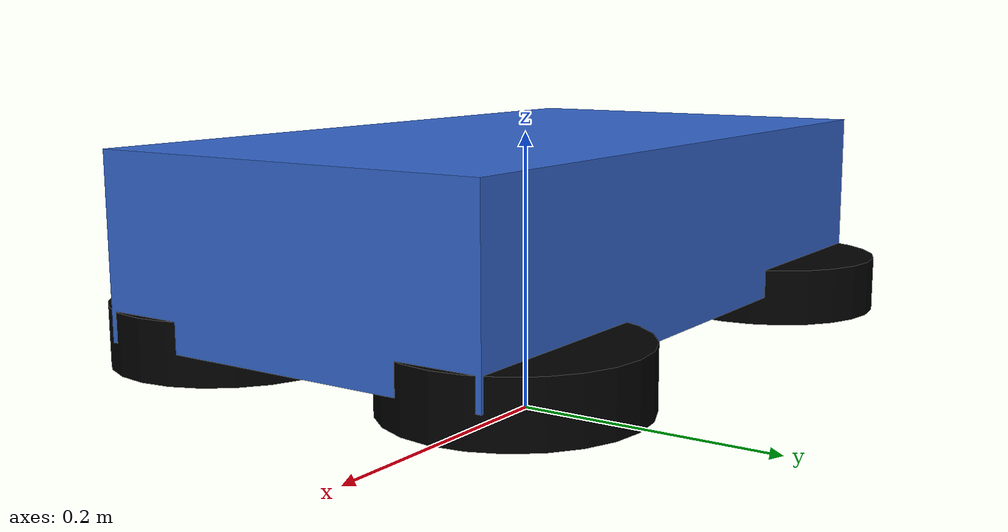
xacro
<?xml version="1.0"?>
<robot name="simple_rover" xmlns:xacro="http://www.ros.org/wiki/xacro">

  <!-- Simple 4-wheel rover: front steering + four wheels -->

  <!-- Parameters -->
  <xacro:property name="wheel_radius" value="0.08"/>
  <xacro:property name="wheel_width" value="0.04"/>
  <xacro:property name="wheel_base" value="0.35"/> <!-- distance between front and rear axles -->
  <xacro:property name="track_width" value="0.22"/> <!-- distance between left and right wheels -->
  <xacro:property name="chassis_length" value="${wheel_base + 0.15}"/>
  <xacro:property name="chassis_width" value="${track_width + 0.06}"/>
  <xacro:property name="chassis_height" value="0.12"/>
  <xacro:property name="chassis_mass" value="12.0"/>
  <xacro:property name="wheel_mass" value="1.0"/>
  <xacro:property name="steer_mass" value="0.1"/>

  <!-- Root link -->
  <link name="base_link_root"/>
  <joint name="root_to_base_link" type="fixed">
    <parent link="base_link_root"/>
    <child link="base_link"/>
    <origin xyz="0 0 0" rpy="0 0 0"/>
  </joint>

  <!-- Chassis -->
  <link name="base_link">
    <inertial>
      <origin xyz="0 0 ${wheel_radius + chassis_height/2.0}" rpy="0 0 0"/>
      <mass value="${chassis_mass}"/>
      <!-- Simple box inertia approximation -->
      <inertia ixx="${(1.0/12.0)*chassis_mass*(chassis_height*chassis_height + chassis_length*chassis_length)}"
               ixy="0" ixz="0"
               iyy="${(1.0/12.0)*chassis_mass*(chassis_width*chassis_width + chassis_length*chassis_length)}" iyz="0"
               izz="${(1.0/12.0)*chassis_mass*(chassis_width*chassis_width + chassis_height*chassis_height)}"/>
    </inertial>
    <visual>
      <origin xyz="0 0 ${wheel_radius + chassis_height/2.0}" rpy="0 0 0"/>
      <geometry>
        <box size="${chassis_length} ${chassis_width} ${chassis_height}"/>
      </geometry>
      <material name="blue"><color rgba="0.2 0.4 0.8 1.0"/></material>
    </visual>
    <collision>
      <origin xyz="0 0 ${wheel_radius + chassis_height/2.0}" rpy="0 0 0"/>
      <geometry>
        <box size="${chassis_length} ${chassis_width} ${chassis_height}"/>
      </geometry>
    </collision>
  </link>

  <!-- Steering links (small mass-less links to steer front wheels) -->
  <link name="front_left_steer">
    <inertial>
      <origin xyz="0 0 0" rpy="0 0 0"/>
      <mass value="${steer_mass}"/>
      <inertia ixx="0.0001" ixy="0" ixz="0" iyy="0.0001" iyz="0" izz="0.0001"/>
    </inertial>
  </link>
  <link name="front_right_steer">
    <inertial>
      <origin xyz="0 0 0" rpy="0 0 0"/>
      <mass value="${steer_mass}"/>
      <inertia ixx="0.0001" ixy="0" ixz="0" iyy="0.0001" iyz="0" izz="0.0001"/>
    </inertial>
  </link>

  <!-- Wheel definitions -->
  <link name="front_left_wheel">
    <inertial>
      <origin xyz="0 0 0" rpy="0 0 0"/>
      <mass value="${wheel_mass}"/>
      <inertia ixx="${0.5*wheel_mass*wheel_radius*wheel_radius}" ixy="0" ixz="0"
               iyy="${(1.0/12.0)*wheel_mass*(2*wheel_radius*2*wheel_radius + wheel_width*wheel_width)}" iyz="0"
               izz="${0.5*wheel_mass*wheel_radius*wheel_radius}"/>
    </inertial>
    <visual>
      <origin xyz="0 0 0" rpy="0 0 0"/>
      <geometry>
        <cylinder length="${wheel_width}" radius="${wheel_radius}"/>
      </geometry>
      <material name="black"><color rgba="0 0 0 1"/></material>
    </visual>
    <collision>
      <origin xyz="0 0 0" rpy="0 0 0"/>
      <geometry>
        <cylinder length="${wheel_width}" radius="${wheel_radius}"/>
      </geometry>
    </collision>
  </link>

  <link name="front_right_wheel">
    <inertial>
      <origin xyz="0 0 0" rpy="0 0 0"/>
      <mass value="${wheel_mass}"/>
      <inertia ixx="${0.5*wheel_mass*wheel_radius*wheel_radius}" ixy="0" ixz="0"
               iyy="${(1.0/12.0)*wheel_mass*(2*wheel_radius*2*wheel_radius + wheel_width*wheel_width)}" iyz="0"
               izz="${0.5*wheel_mass*wheel_radius*wheel_radius}"/>
    </inertial>
    <visual>
      <origin xyz="0 0 0" rpy="0 0 0"/>
      <geometry>
        <cylinder length="${wheel_width}" radius="${wheel_radius}"/>
      </geometry>
      <material name="black"><color rgba="0 0 0 1"/></material>
    </visual>
    <collision>
      <origin xyz="0 0 0" rpy="0 0 0"/>
      <geometry>
        <cylinder length="${wheel_width}" radius="${wheel_radius}"/>
      </geometry>
    </collision>
  </link>

  <link name="rear_left_wheel">
    <inertial>
      <origin xyz="0 0 0" rpy="0 0 0"/>
      <mass value="${wheel_mass}"/>
      <inertia ixx="${0.5*wheel_mass*wheel_radius*wheel_radius}" ixy="0" ixz="0"
               iyy="${(1.0/12.0)*wheel_mass*(2*wheel_radius*2*wheel_radius + wheel_width*wheel_width)}" iyz="0"
               izz="${0.5*wheel_mass*wheel_radius*wheel_radius}"/>
    </inertial>
    <visual>
      <origin xyz="0 0 0" rpy="0 0 0"/>
      <geometry>
        <cylinder length="${wheel_width}" radius="${wheel_radius}"/>
      </geometry>
      <material name="black"><color rgba="0 0 0 1"/></material>
    </visual>
    <collision>
      <origin xyz="0 0 0" rpy="0 0 0"/>
      <geometry>
        <cylinder length="${wheel_width}" radius="${wheel_radius}"/>
      </geometry>
    </collision>
  </link>

  <link name="rear_right_wheel">
    <inertial>
      <origin xyz="0 0 0" rpy="0 0 0"/>
      <mass value="${wheel_mass}"/>
      <inertia ixx="${0.5*wheel_mass*wheel_radius*wheel_radius}" ixy="0" ixz="0"
               iyy="${(1.0/12.0)*wheel_mass*(2*wheel_radius*2*wheel_radius + wheel_width*wheel_width)}" iyz="0"
               izz="${0.5*wheel_mass*wheel_radius*wheel_radius}"/>
    </inertial>
    <visual>
      <origin xyz="0 0 0" rpy="0 0 0"/>
      <geometry>
        <cylinder length="${wheel_width}" radius="${wheel_radius}"/>
      </geometry>
      <material name="black"><color rgba="0 0 0 1"/></material>
    </visual>
    <collision>
      <origin xyz="0 0 0" rpy="0 0 0"/>
      <geometry>
        <cylinder length="${wheel_width}" radius="${wheel_radius}"/>
      </geometry>
    </collision>
  </link>

  <!-- Joints -->
  <!-- Front steering (yaw) joints -->
  <joint name="front_left_steer_joint" type="revolute">
    <parent link="base_link"/>
    <child link="front_left_steer"/>
    <origin xyz="${wheel_base/2.0} ${track_width/2.0} ${wheel_radius}" rpy="0 0 0"/>
    <axis xyz="0 0 1"/>
    <limit lower="-0.785" upper="0.785" effort="10" velocity="1.0"/>
  </joint>

  <joint name="front_right_steer_joint" type="revolute">
    <parent link="base_link"/>
    <child link="front_right_steer"/>
    <origin xyz="${wheel_base/2.0} ${-track_width/2.0} ${wheel_radius}" rpy="0 0 0"/>
    <axis xyz="0 0 1"/>
    <limit lower="-0.785" upper="0.785" effort="10" velocity="1.0"/>
  </joint>

  <!-- Wheel spin joints (rotate around robot Y axis) -->
  <joint name="front_left_wheel_joint" type="continuous">
    <parent link="front_left_steer"/>
    <child link="front_left_wheel"/>
    <origin xyz="0 0 0" rpy="0 0 0"/>
    <axis xyz="0 1 0"/>
  </joint>

  <joint name="front_right_wheel_joint" type="continuous">
    <parent link="front_right_steer"/>
    <child link="front_right_wheel"/>
    <origin xyz="0 0 0" rpy="0 0 0"/>
    <axis xyz="0 1 0"/>
  </joint>

  <joint name="rear_left_wheel_joint" type="continuous">
    <parent link="base_link"/>
    <child link="rear_left_wheel"/>
    <origin xyz="${-wheel_base/2.0} ${track_width/2.0} ${wheel_radius}" rpy="0 0 0"/>
    <axis xyz="0 1 0"/>
  </joint>

  <joint name="rear_right_wheel_joint" type="continuous">
    <parent link="base_link"/>
    <child link="rear_right_wheel"/>
    <origin xyz="${-wheel_base/2.0} ${-track_width/2.0} ${wheel_radius}" rpy="0 0 0"/>
    <axis xyz="0 1 0"/>
  </joint>

  <!-- IMU frame -->
  <link name="imu_link"/>
  <joint name="imu_joint" type="fixed">
    <parent link="base_link"/>
    <child link="imu_link"/>
    <origin xyz="0 0 ${wheel_radius + chassis_height}" rpy="0 0 0"/>
  </joint>

  <!-- Gazebo hints -->
  <gazebo reference="front_left_wheel">
    <mu1>0.8</mu1>
    <mu2>0.8</mu2>
  </gazebo>
  <gazebo reference="front_right_wheel">
    <mu1>0.8</mu1>
    <mu2>0.8</mu2>
  </gazebo>

</robot>
